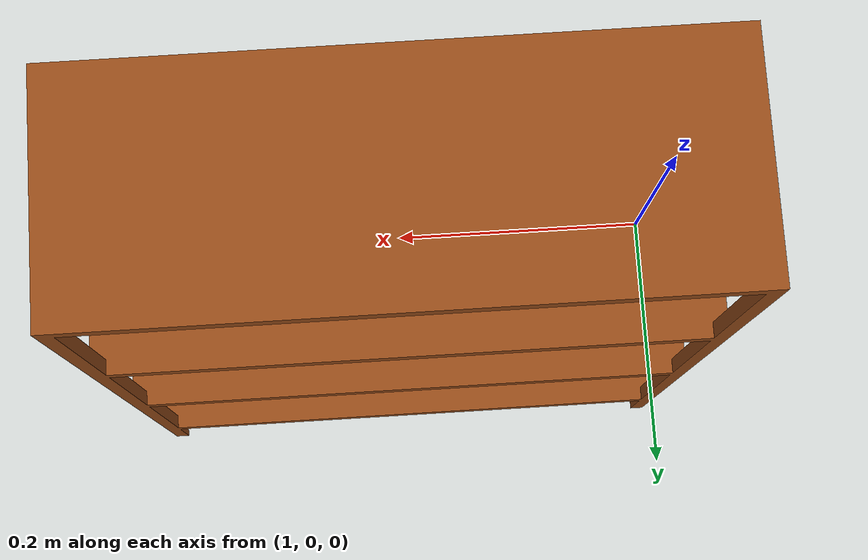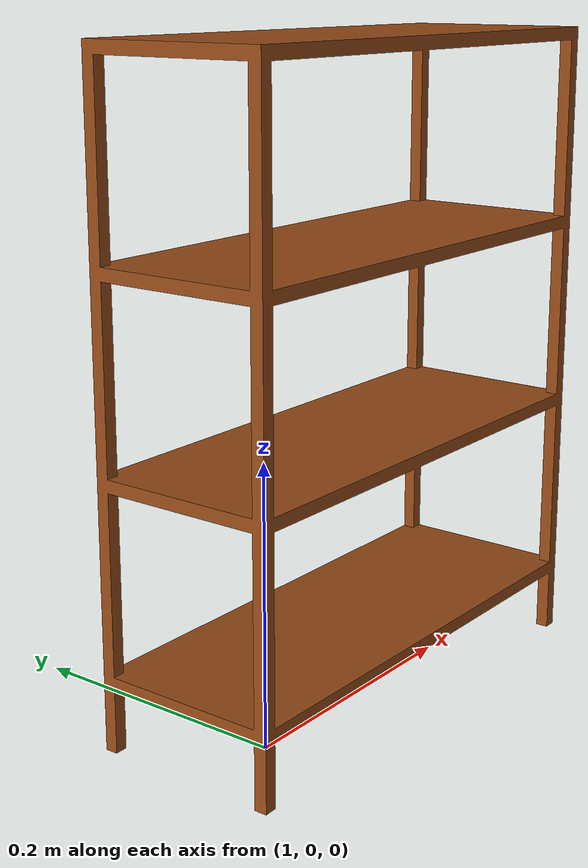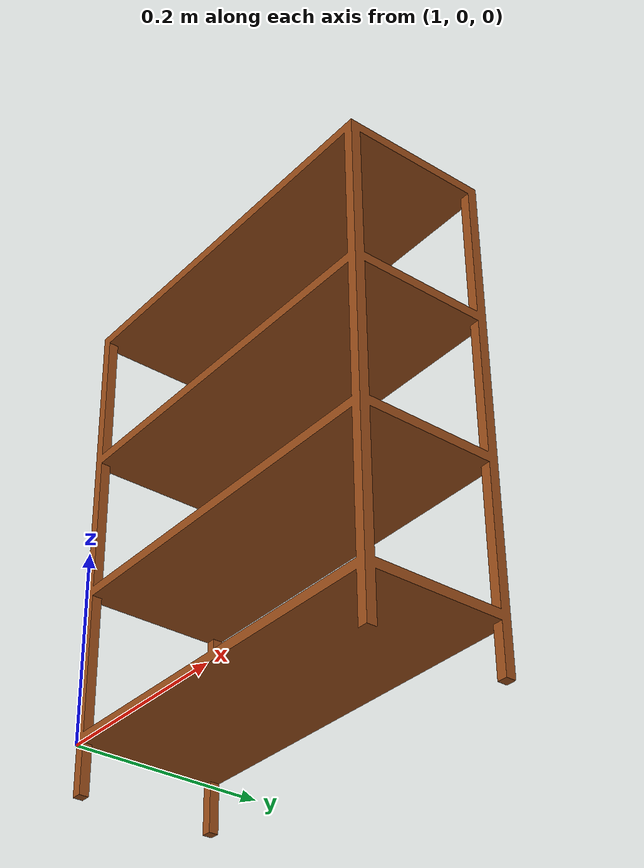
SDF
<?xml version="1.0" ?>
<sdf version="1.5">
  <model name="rack">
    <static>true</static>

    <link name="link">
      <pose>1 0 0 0 0 0</pose>
      <collision name="collision">
        <geometry>
            <mesh>
              <uri>
                mesh/rack.stl
              </uri>
              <scale>
                0.01 0.01 0.01
              </scale>
            </mesh>
        </geometry>
      </collision>

      <visual name="visual">
        <cast_shadows>true</cast_shadows>
        <geometry>
            <mesh>
              <uri>
                mesh/rack.stl
              </uri>
              <scale>
                0.01 0.01 0.01
              </scale>
            </mesh>
        </geometry>
        <material>
          <ambient>0.6 0.3 0.1 1</ambient>
          <diffuse>0.6 0.3 0.1 1</diffuse>
        </material>
      </visual>
    </link>
  </model>
</sdf>
